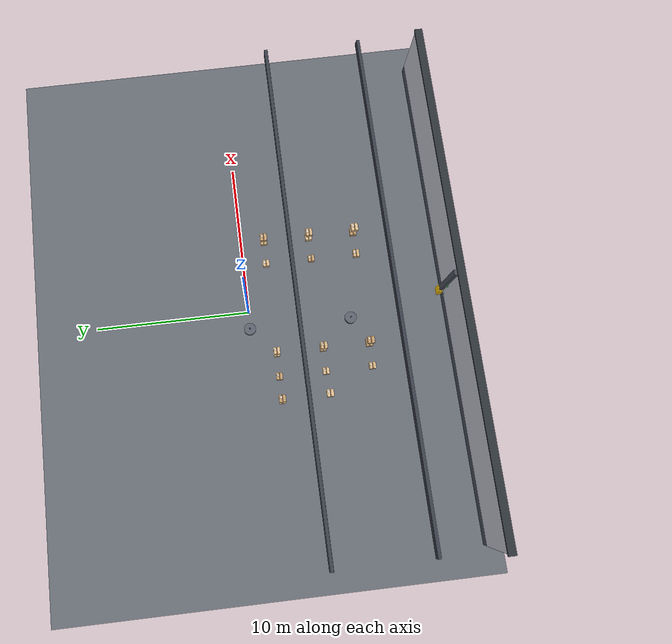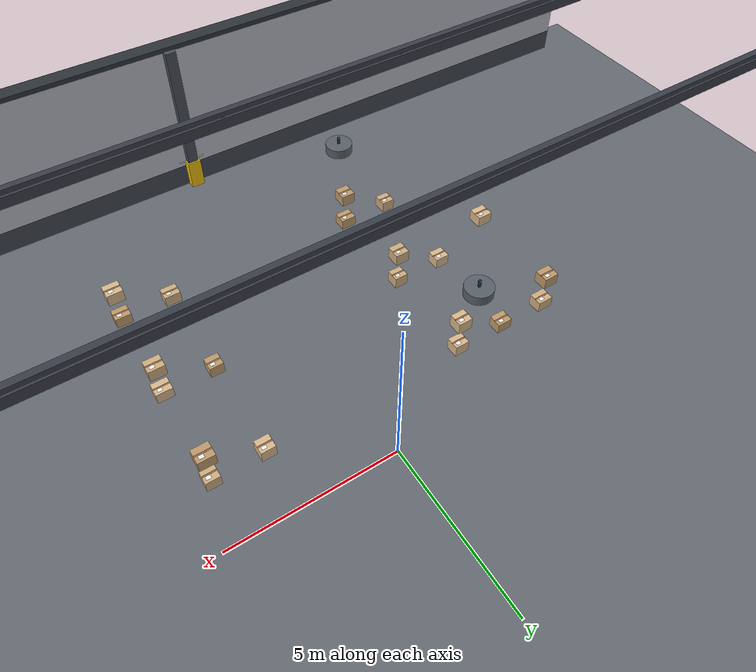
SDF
<sdf version="1.8">
 <world name="warehouse_3d">
  <model name="warehouse_floor">
   <static>true</static>
   <link name="floor_link">
    <collision name="floor_collision">
     <geometry><plane><normal>0 0 1</normal><size>36 28</size></plane></geometry>
     <surface><friction><ode><mu>1.0</mu><mu2>1.0</mu2></ode></friction></surface>
    </collision>
    <visual name="floor_visual">
     <geometry><plane><normal>0 0 1</normal><size>36 28</size></plane></geometry>
     <material>
      <ambient>0.32 0.34 0.36 1.0</ambient>
      <diffuse>0.40 0.42 0.45 1.0</diffuse>
      <specular>0.15 0.15 0.15 1.0</specular>
     </material>
    </visual>
   </link>
  </model>
  <model name="warehouse_architecture">
   <static>true</static>
   <link name="wall_south_base">
    <pose>0.0000 -13.0000 0.4000 0.0000 0.0000 0.0000</pose>
    <collision name="wall_south_base_col">
     <geometry><box><size>32.4000 0.4000 0.8000</size></box></geometry>
    </collision>
    <visual name="wall_south_base_vis">
     <geometry><box><size>32.4000 0.4000 0.8000</size></box></geometry>
     <material>
      <ambient>0.163 0.182 0.208 1.00</ambient>
      <diffuse>0.250 0.280 0.320 1.00</diffuse>
      <specular>0.15 0.15 0.15 1.0</specular>
     </material>
    </visual>
   </link>
   <link name="wall_south_upper">
    <pose>0.0000 -13.0000 3.0000 0.0000 0.0000 0.0000</pose>
    <collision name="wall_south_upper_col">
     <geometry><box><size>32.4000 0.4000 4.4000</size></box></geometry>
    </collision>
    <visual name="wall_south_upper_vis">
     <geometry><box><size>32.4000 0.4000 4.4000</size></box></geometry>
     <material>
      <ambient>0.468 0.481 0.501 1.00</ambient>
      <diffuse>0.720 0.740 0.770 1.00</diffuse>
      <specular>0.15 0.15 0.15 1.0</specular>
     </material>
    </visual>
   </link>
   <link name="wall_south_coping">
    <pose>0.0000 -13.0000 5.2500 0.0000 0.0000 0.0000</pose>
    <collision name="wall_south_coping_col">
     <geometry><box><size>32.6000 0.5000 0.1500</size></box></geometry>
    </collision>
    <visual name="wall_south_coping_vis">
     <geometry><box><size>32.6000 0.5000 0.1500</size></box></geometry>
     <material>
      <ambient>0.117 0.130 0.143 1.00</ambient>
      <diffuse>0.180 0.200 0.220 1.00</diffuse>
      <specular>0.15 0.15 0.15 1.0</specular>
     </material>
    </visual>
   </link>
   <link name="exit_door_south">
    <pose>0.0000 -12.8500 1.1000 0.0000 0.0000 0.0000</pose>
    <collision name="exit_door_south_col">
     <geometry><box><size>1.1000 0.0500 2.2000</size></box></geometry>
    </collision>
    <visual name="exit_door_south_vis">
     <geometry><box><size>1.1000 0.0500 2.2000</size></box></geometry>
     <material>
      <ambient>0.195 0.208 0.227 1.00</ambient>
      <diffuse>0.300 0.320 0.350 1.00</diffuse>
      <specular>0.15 0.15 0.15 1.0</specular>
     </material>
    </visual>
   </link>
   <link name="exit_pushbar_south">
    <pose>0.0000 -12.8000 1.0000 0.0000 0.0000 0.0000</pose>
    <collision name="exit_pushbar_south_col">
     <geometry><box><size>0.8500 0.0600 0.0600</size></box></geometry>
    </collision>
    <visual name="exit_pushbar_south_vis">
     <geometry><box><size>0.8500 0.0600 0.0600</size></box></geometry>
     <material>
      <ambient>0.520 0.520 0.552 1.00</ambient>
      <diffuse>0.800 0.800 0.850 1.00</diffuse>
      <specular>0.15 0.15 0.15 1.0</specular>
     </material>
    </visual>
   </link>
   <link name="exit_sign_south">
    <pose>0.0000 -12.8000 2.3500 0.0000 0.0000 0.0000</pose>
    <visual name="exit_sign_south_vis">
     <geometry><box><size>0.5500 0.0800 0.2500</size></box></geometry>
     <material>
      <ambient>0.065 0.552 0.163 1.00</ambient>
      <diffuse>0.100 0.850 0.250 1.00</diffuse>
      <specular>0.15 0.15 0.15 1.0</specular>
      <emissive>0.100 0.800 0.200 1.0</emissive>
     </material>
    </visual>
   </link>
   <link name="col_13_base">
    <pose>0.0000 -12.7500 0.5000 0.0000 0.0000 0.0000</pose>
    <collision name="col_13_base_col">
     <geometry><box><size>0.4500 0.4500 1.0000</size></box></geometry>
    </collision>
    <visual name="col_13_base_vis">
     <geometry><box><size>0.4500 0.4500 1.0000</size></box></geometry>
     <material>
      <ambient>0.617 0.488 0.033 1.00</ambient>
      <diffuse>0.950 0.750 0.050 1.00</diffuse>
      <specular>0.15 0.15 0.15 1.0</specular>
     </material>
    </visual>
   </link>
   <link name="col_13_stem">
    <pose>0.0000 -12.7500 3.1000 0.0000 0.0000 0.0000</pose>
    <collision name="col_13_stem_col">
     <geometry><box><size>0.3500 0.3500 4.2000</size></box></geometry>
    </collision>
    <visual name="col_13_stem_vis">
     <geometry><box><size>0.3500 0.3500 4.2000</size></box></geometry>
     <material>
      <ambient>0.182 0.195 0.221 1.00</ambient>
      <diffuse>0.280 0.300 0.340 1.00</diffuse>
      <specular>0.15 0.15 0.15 1.0</specular>
     </material>
    </visual>
   </link>
   <link name="truss_beam_0">
    <pose>0.0000 -9.0000 4.9000 0.0000 0.0000 0.0000</pose>
    <visual name="truss_beam_0_vis">
     <geometry><box><size>32.0000 0.2500 0.3500</size></box></geometry>
     <material>
      <ambient>0.143 0.156 0.182 1.00</ambient>
      <diffuse>0.220 0.240 0.280 1.00</diffuse>
      <specular>0.15 0.15 0.15 1.0</specular>
     </material>
    </visual>
   </link>
   <link name="truss_top_0">
    <pose>0.0000 -9.0000 5.2000 0.0000 0.0000 0.0000</pose>
    <visual name="truss_top_0_vis">
     <geometry><box><size>32.0000 0.2000 0.1500</size></box></geometry>
     <material>
      <ambient>0.143 0.156 0.182 1.00</ambient>
      <diffuse>0.220 0.240 0.280 1.00</diffuse>
      <specular>0.15 0.15 0.15 1.0</specular>
     </material>
    </visual>
   </link>
   <link name="truss_web_0_1">
    <pose>-6.0000 -9.0000 5.0500 0.0000 0.0000 0.0000</pose>
    <visual name="truss_web_0_1_vis">
     <geometry><box><size>0.1200 0.1200 0.3000</size></box></geometry>
     <material>
      <ambient>0.182 0.195 0.221 1.00</ambient>
      <diffuse>0.280 0.300 0.340 1.00</diffuse>
      <specular>0.15 0.15 0.15 1.0</specular>
     </material>
    </visual>
   </link>
   <link name="truss_web_0_2">
    <pose>0.0000 -9.0000 5.0500 0.0000 0.0000 0.0000</pose>
    <visual name="truss_web_0_2_vis">
     <geometry><box><size>0.1200 0.1200 0.3000</size></box></geometry>
     <material>
      <ambient>0.182 0.195 0.221 1.00</ambient>
      <diffuse>0.280 0.300 0.340 1.00</diffuse>
      <specular>0.15 0.15 0.15 1.0</specular>
     </material>
    </visual>
   </link>
   <link name="truss_beam_1">
    <pose>0.0000 -3.0000 4.9000 0.0000 0.0000 0.0000</pose>
    <visual name="truss_beam_1_vis">
     <geometry><box><size>32.0000 0.2500 0.3500</size></box></geometry>
     <material>
      <ambient>0.143 0.156 0.182 1.00</ambient>
      <diffuse>0.220 0.240 0.280 1.00</diffuse>
      <specular>0.15 0.15 0.15 1.0</specular>
     </material>
    </visual>
   </link>
   <link name="truss_top_1">
    <pose>0.0000 -3.0000 5.2000 0.0000 0.0000 0.0000</pose>
    <visual name="truss_top_1_vis">
     <geometry><box><size>32.0000 0.2000 0.1500</size></box></geometry>
     <material>
      <ambient>0.143 0.156 0.182 1.00</ambient>
      <diffuse>0.220 0.240 0.280 1.00</diffuse>
      <specular>0.15 0.15 0.15 1.0</specular>
     </material>
    </visual>
   </link>
   <link name="truss_web_1_1">
    <pose>-6.0000 -3.0000 5.0500 0.0000 0.0000 0.0000</pose>
    <visual name="truss_web_1_1_vis">
     <geometry><box><size>0.1200 0.1200 0.3000</size></box></geometry>
     <material>
      <ambient>0.182 0.195 0.221 1.00</ambient>
      <diffuse>0.280 0.300 0.340 1.00</diffuse>
      <specular>0.15 0.15 0.15 1.0</specular>
     </material>
    </visual>
   </link>
   <link name="truss_web_1_2">
    <pose>0.0000 -3.0000 5.0500 0.0000 0.0000 0.0000</pose>
    <visual name="truss_web_1_2_vis">
     <geometry><box><size>0.1200 0.1200 0.3000</size></box></geometry>
     <material>
      <ambient>0.182 0.195 0.221 1.00</ambient>
      <diffuse>0.280 0.300 0.340 1.00</diffuse>
      <specular>0.15 0.15 0.15 1.0</specular>
     </material>
    </visual>
   </link>
   <link name="fixture_bell_3">
    <pose>-2.0000 -6.0000 5.1500 0.0000 0.0000 0.0000</pose>
    <visual name="fixture_bell_3_vis">
     <geometry><cylinder><radius>0.3500</radius><length>0.2500</length></cylinder></geometry>
     <material>
      <ambient>0.227 0.247 0.273 1.00</ambient>
      <diffuse>0.350 0.380 0.420 1.00</diffuse>
      <specular>0.2 0.2 0.2 1.0</specular>
     </material>
    </visual>
   </link>
   <link name="fixture_stem_3">
    <pose>-2.0000 -6.0000 5.3500 0.0000 0.0000 0.0000</pose>
    <visual name="fixture_stem_3_vis">
     <geometry><cylinder><radius>0.0400</radius><length>0.2000</length></cylinder></geometry>
     <material>
      <ambient>0.098 0.098 0.117 1.00</ambient>
      <diffuse>0.150 0.150 0.180 1.00</diffuse>
      <specular>0.2 0.2 0.2 1.0</specular>
     </material>
    </visual>
   </link>
   <link name="fixture_lens_3">
    <pose>-2.0000 -6.0000 5.0200 0.0000 0.0000 0.0000</pose>
    <visual name="fixture_lens_3_vis">
     <geometry><cylinder><radius>0.3200</radius><length>0.0400</length></cylinder></geometry>
     <material>
      <ambient>0.617 0.637 0.650 1.00</ambient>
      <diffuse>0.950 0.980 1.000 1.00</diffuse>
      <specular>0.2 0.2 0.2 1.0</specular>
      <emissive>0.850 0.880 0.950 1.0</emissive>
     </material>
    </visual>
   </link>
   <link name="fixture_bell_4">
    <pose>-2.0000 0.0000 5.1500 0.0000 0.0000 0.0000</pose>
    <visual name="fixture_bell_4_vis">
     <geometry><cylinder><radius>0.3500</radius><length>0.2500</length></cylinder></geometry>
     <material>
      <ambient>0.227 0.247 0.273 1.00</ambient>
      <diffuse>0.350 0.380 0.420 1.00</diffuse>
      <specular>0.2 0.2 0.2 1.0</specular>
     </material>
    </visual>
   </link>
   <link name="fixture_stem_4">
    <pose>-2.0000 0.0000 5.3500 0.0000 0.0000 0.0000</pose>
    <visual name="fixture_stem_4_vis">
     <geometry><cylinder><radius>0.0400</radius><length>0.2000</length></cylinder></geometry>
     <material>
      <ambient>0.098 0.098 0.117 1.00</ambient>
      <diffuse>0.150 0.150 0.180 1.00</diffuse>
      <specular>0.2 0.2 0.2 1.0</specular>
     </material>
    </visual>
   </link>
   <link name="fixture_lens_4">
    <pose>-2.0000 0.0000 5.0200 0.0000 0.0000 0.0000</pose>
    <visual name="fixture_lens_4_vis">
     <geometry><cylinder><radius>0.3200</radius><length>0.0400</length></cylinder></geometry>
     <material>
      <ambient>0.617 0.637 0.650 1.00</ambient>
      <diffuse>0.950 0.980 1.000 1.00</diffuse>
      <specular>0.2 0.2 0.2 1.0</specular>
      <emissive>0.850 0.880 0.950 1.0</emissive>
     </material>
    </visual>
   </link>
  </model>
  <model name="package_P004">
   <static>true</static>
   <pose>-4.50 -7.50 0.82 0 0 0</pose>
   <link name="box_link">
    <collision name="box_col"><geometry><box><size>0.41 0.41 0.36</size></box></geometry></collision>
    <visual name="box_vis">
     <geometry><box><size>0.41 0.41 0.36</size></box></geometry>
     <material>
      <ambient>0.57 0.48 0.36 1.0</ambient>
      <diffuse>0.82 0.69 0.51 1.0</diffuse>
      <specular>0.08 0.08 0.08 1.0</specular>
     </material>
    </visual>
    <visual name="top_tape">
     <pose>0 0 0.1810 0 0 0</pose>
     <geometry><box><size>0.412 0.05 0.002</size></box></geometry>
     <material><ambient>0.48 0.35 0.20 1.0</ambient><diffuse>0.55 0.40 0.24 1.0</diffuse></material>
    </visual>
    <visual name="shipping_label">
     <pose>0.061 0.082 0.1820 0 0 0</pose>
     <geometry><box><size>0.14 0.10 0.002</size></box></geometry>
     <material><ambient>0.92 0.92 0.92 1.0</ambient><diffuse>0.98 0.98 0.98 1.0</diffuse></material>
    </visual>
   </link>
  </model>
  <model name="package_P005">
   <static>true</static>
   <pose>-3.00 -7.50 0.82 0 0 0</pose>
   <link name="box_link">
    <collision name="box_col"><geometry><box><size>0.48 0.40 0.34</size></box></geometry></collision>
    <visual name="box_vis">
     <geometry><box><size>0.48 0.40 0.34</size></box></geometry>
     <material>
      <ambient>0.53 0.43 0.30 1.0</ambient>
      <diffuse>0.76 0.61 0.43 1.0</diffuse>
      <specular>0.08 0.08 0.08 1.0</specular>
     </material>
    </visual>
    <visual name="top_tape">
     <pose>0 0 0.1710 0 0 0</pose>
     <geometry><box><size>0.482 0.05 0.002</size></box></geometry>
     <material><ambient>0.48 0.35 0.20 1.0</ambient><diffuse>0.55 0.40 0.24 1.0</diffuse></material>
    </visual>
    <visual name="shipping_label">
     <pose>0.072 0.080 0.1720 0 0 0</pose>
     <geometry><box><size>0.14 0.10 0.002</size></box></geometry>
     <material><ambient>0.92 0.92 0.92 1.0</ambient><diffuse>0.98 0.98 0.98 1.0</diffuse></material>
    </visual>
   </link>
  </model>
  <model name="package_P008">
   <static>true</static>
   <pose>-3.00 -7.50 1.82 0 0 0</pose>
   <link name="box_link">
    <collision name="box_col"><geometry><box><size>0.42 0.44 0.36</size></box></geometry></collision>
    <visual name="box_vis">
     <geometry><box><size>0.42 0.44 0.36</size></box></geometry>
     <material>
      <ambient>0.53 0.43 0.30 1.0</ambient>
      <diffuse>0.76 0.61 0.43 1.0</diffuse>
      <specular>0.08 0.08 0.08 1.0</specular>
     </material>
    </visual>
    <visual name="top_tape">
     <pose>0 0 0.1810 0 0 0</pose>
     <geometry><box><size>0.422 0.05 0.002</size></box></geometry>
     <material><ambient>0.48 0.35 0.20 1.0</ambient><diffuse>0.55 0.40 0.24 1.0</diffuse></material>
    </visual>
    <visual name="shipping_label">
     <pose>0.063 0.088 0.1820 0 0 0</pose>
     <geometry><box><size>0.14 0.10 0.002</size></box></geometry>
     <material><ambient>0.92 0.92 0.92 1.0</ambient><diffuse>0.98 0.98 0.98 1.0</diffuse></material>
    </visual>
   </link>
  </model>
  <model name="package_P012">
   <static>true</static>
   <pose>-4.50 -4.50 0.82 0 0 0</pose>
   <link name="box_link">
    <collision name="box_col"><geometry><box><size>0.43 0.40 0.35</size></box></geometry></collision>
    <visual name="box_vis">
     <geometry><box><size>0.43 0.40 0.35</size></box></geometry>
     <material>
      <ambient>0.60 0.51 0.39 1.0</ambient>
      <diffuse>0.86 0.73 0.56 1.0</diffuse>
      <specular>0.08 0.08 0.08 1.0</specular>
     </material>
    </visual>
    <visual name="top_tape">
     <pose>0 0 0.1760 0 0 0</pose>
     <geometry><box><size>0.432 0.05 0.002</size></box></geometry>
     <material><ambient>0.48 0.35 0.20 1.0</ambient><diffuse>0.55 0.40 0.24 1.0</diffuse></material>
    </visual>
    <visual name="shipping_label">
     <pose>0.065 0.080 0.1770 0 0 0</pose>
     <geometry><box><size>0.14 0.10 0.002</size></box></geometry>
     <material><ambient>0.92 0.92 0.92 1.0</ambient><diffuse>0.98 0.98 0.98 1.0</diffuse></material>
    </visual>
   </link>
  </model>
  <model name="package_P013">
   <static>true</static>
   <pose>-3.00 -4.50 0.82 0 0 0</pose>
   <link name="box_link">
    <collision name="box_col"><geometry><box><size>0.41 0.39 0.38</size></box></geometry></collision>
    <visual name="box_vis">
     <geometry><box><size>0.41 0.39 0.38</size></box></geometry>
     <material>
      <ambient>0.57 0.48 0.36 1.0</ambient>
      <diffuse>0.82 0.69 0.51 1.0</diffuse>
      <specular>0.08 0.08 0.08 1.0</specular>
     </material>
    </visual>
    <visual name="top_tape">
     <pose>0 0 0.1910 0 0 0</pose>
     <geometry><box><size>0.412 0.05 0.002</size></box></geometry>
     <material><ambient>0.48 0.35 0.20 1.0</ambient><diffuse>0.55 0.40 0.24 1.0</diffuse></material>
    </visual>
    <visual name="shipping_label">
     <pose>0.061 0.078 0.1920 0 0 0</pose>
     <geometry><box><size>0.14 0.10 0.002</size></box></geometry>
     <material><ambient>0.92 0.92 0.92 1.0</ambient><diffuse>0.98 0.98 0.98 1.0</diffuse></material>
    </visual>
   </link>
  </model>
  <model name="package_P015">
   <static>true</static>
   <pose>-6.00 -4.50 1.82 0 0 0</pose>
   <link name="box_link">
    <collision name="box_col"><geometry><box><size>0.45 0.43 0.35</size></box></geometry></collision>
    <visual name="box_vis">
     <geometry><box><size>0.45 0.43 0.35</size></box></geometry>
     <material>
      <ambient>0.60 0.51 0.39 1.0</ambient>
      <diffuse>0.86 0.73 0.56 1.0</diffuse>
      <specular>0.08 0.08 0.08 1.0</specular>
     </material>
    </visual>
    <visual name="top_tape">
     <pose>0 0 0.1760 0 0 0</pose>
     <geometry><box><size>0.452 0.05 0.002</size></box></geometry>
     <material><ambient>0.48 0.35 0.20 1.0</ambient><diffuse>0.55 0.40 0.24 1.0</diffuse></material>
    </visual>
    <visual name="shipping_label">
     <pose>0.068 0.086 0.1770 0 0 0</pose>
     <geometry><box><size>0.14 0.10 0.002</size></box></geometry>
     <material><ambient>0.92 0.92 0.92 1.0</ambient><diffuse>0.98 0.98 0.98 1.0</diffuse></material>
    </visual>
   </link>
  </model>
  <model name="package_P016">
   <static>true</static>
   <pose>-3.00 -4.50 1.82 0 0 0</pose>
   <link name="box_link">
    <collision name="box_col"><geometry><box><size>0.42 0.42 0.37</size></box></geometry></collision>
    <visual name="box_vis">
     <geometry><box><size>0.42 0.42 0.37</size></box></geometry>
     <material>
      <ambient>0.57 0.48 0.36 1.0</ambient>
      <diffuse>0.82 0.69 0.51 1.0</diffuse>
      <specular>0.08 0.08 0.08 1.0</specular>
     </material>
    </visual>
    <visual name="top_tape">
     <pose>0 0 0.1860 0 0 0</pose>
     <geometry><box><size>0.422 0.05 0.002</size></box></geometry>
     <material><ambient>0.48 0.35 0.20 1.0</ambient><diffuse>0.55 0.40 0.24 1.0</diffuse></material>
    </visual>
    <visual name="shipping_label">
     <pose>0.063 0.084 0.1870 0 0 0</pose>
     <geometry><box><size>0.14 0.10 0.002</size></box></geometry>
     <material><ambient>0.92 0.92 0.92 1.0</ambient><diffuse>0.98 0.98 0.98 1.0</diffuse></material>
    </visual>
   </link>
  </model>
  <model name="package_P019">
   <static>true</static>
   <pose>-6.00 -1.50 0.82 0 0 0</pose>
   <link name="box_link">
    <collision name="box_col"><geometry><box><size>0.47 0.40 0.36</size></box></geometry></collision>
    <visual name="box_vis">
     <geometry><box><size>0.47 0.40 0.36</size></box></geometry>
     <material>
      <ambient>0.57 0.48 0.36 1.0</ambient>
      <diffuse>0.82 0.69 0.51 1.0</diffuse>
      <specular>0.08 0.08 0.08 1.0</specular>
     </material>
    </visual>
    <visual name="top_tape">
     <pose>0 0 0.1810 0 0 0</pose>
     <geometry><box><size>0.472 0.05 0.002</size></box></geometry>
     <material><ambient>0.48 0.35 0.20 1.0</ambient><diffuse>0.55 0.40 0.24 1.0</diffuse></material>
    </visual>
    <visual name="shipping_label">
     <pose>0.070 0.080 0.1820 0 0 0</pose>
     <geometry><box><size>0.14 0.10 0.002</size></box></geometry>
     <material><ambient>0.92 0.92 0.92 1.0</ambient><diffuse>0.98 0.98 0.98 1.0</diffuse></material>
    </visual>
   </link>
  </model>
  <model name="package_P020">
   <static>true</static>
   <pose>-4.50 -1.50 0.82 0 0 0</pose>
   <link name="box_link">
    <collision name="box_col"><geometry><box><size>0.45 0.39 0.34</size></box></geometry></collision>
    <visual name="box_vis">
     <geometry><box><size>0.45 0.39 0.34</size></box></geometry>
     <material>
      <ambient>0.53 0.43 0.30 1.0</ambient>
      <diffuse>0.76 0.61 0.43 1.0</diffuse>
      <specular>0.08 0.08 0.08 1.0</specular>
     </material>
    </visual>
    <visual name="top_tape">
     <pose>0 0 0.1710 0 0 0</pose>
     <geometry><box><size>0.452 0.05 0.002</size></box></geometry>
     <material><ambient>0.48 0.35 0.20 1.0</ambient><diffuse>0.55 0.40 0.24 1.0</diffuse></material>
    </visual>
    <visual name="shipping_label">
     <pose>0.068 0.078 0.1720 0 0 0</pose>
     <geometry><box><size>0.14 0.10 0.002</size></box></geometry>
     <material><ambient>0.92 0.92 0.92 1.0</ambient><diffuse>0.98 0.98 0.98 1.0</diffuse></material>
    </visual>
   </link>
  </model>
  <model name="package_P021">
   <static>true</static>
   <pose>-3.00 -1.50 0.82 0 0 0</pose>
   <link name="box_link">
    <collision name="box_col"><geometry><box><size>0.43 0.38 0.37</size></box></geometry></collision>
    <visual name="box_vis">
     <geometry><box><size>0.43 0.38 0.37</size></box></geometry>
     <material>
      <ambient>0.60 0.51 0.39 1.0</ambient>
      <diffuse>0.86 0.73 0.56 1.0</diffuse>
      <specular>0.08 0.08 0.08 1.0</specular>
     </material>
    </visual>
    <visual name="top_tape">
     <pose>0 0 0.1860 0 0 0</pose>
     <geometry><box><size>0.432 0.05 0.002</size></box></geometry>
     <material><ambient>0.48 0.35 0.20 1.0</ambient><diffuse>0.55 0.40 0.24 1.0</diffuse></material>
    </visual>
    <visual name="shipping_label">
     <pose>0.065 0.076 0.1870 0 0 0</pose>
     <geometry><box><size>0.14 0.10 0.002</size></box></geometry>
     <material><ambient>0.92 0.92 0.92 1.0</ambient><diffuse>0.98 0.98 0.98 1.0</diffuse></material>
    </visual>
   </link>
  </model>
  <model name="package_P023">
   <static>true</static>
   <pose>-6.00 -1.50 1.82 0 0 0</pose>
   <link name="box_link">
    <collision name="box_col"><geometry><box><size>0.45 0.41 0.36</size></box></geometry></collision>
    <visual name="box_vis">
     <geometry><box><size>0.45 0.41 0.36</size></box></geometry>
     <material>
      <ambient>0.53 0.43 0.30 1.0</ambient>
      <diffuse>0.76 0.61 0.43 1.0</diffuse>
      <specular>0.08 0.08 0.08 1.0</specular>
     </material>
    </visual>
    <visual name="top_tape">
     <pose>0 0 0.1810 0 0 0</pose>
     <geometry><box><size>0.452 0.05 0.002</size></box></geometry>
     <material><ambient>0.48 0.35 0.20 1.0</ambient><diffuse>0.55 0.40 0.24 1.0</diffuse></material>
    </visual>
    <visual name="shipping_label">
     <pose>0.068 0.082 0.1820 0 0 0</pose>
     <geometry><box><size>0.14 0.10 0.002</size></box></geometry>
     <material><ambient>0.92 0.92 0.92 1.0</ambient><diffuse>0.98 0.98 0.98 1.0</diffuse></material>
    </visual>
   </link>
  </model>
  <model name="package_P024">
   <static>true</static>
   <pose>-3.00 -1.50 1.82 0 0 0</pose>
   <link name="box_link">
    <collision name="box_col"><geometry><box><size>0.42 0.40 0.38</size></box></geometry></collision>
    <visual name="box_vis">
     <geometry><box><size>0.42 0.40 0.38</size></box></geometry>
     <material>
      <ambient>0.60 0.51 0.39 1.0</ambient>
      <diffuse>0.86 0.73 0.56 1.0</diffuse>
      <specular>0.08 0.08 0.08 1.0</specular>
     </material>
    </visual>
    <visual name="top_tape">
     <pose>0 0 0.1910 0 0 0</pose>
     <geometry><box><size>0.422 0.05 0.002</size></box></geometry>
     <material><ambient>0.48 0.35 0.20 1.0</ambient><diffuse>0.55 0.40 0.24 1.0</diffuse></material>
    </visual>
    <visual name="shipping_label">
     <pose>0.063 0.080 0.1920 0 0 0</pose>
     <geometry><box><size>0.14 0.10 0.002</size></box></geometry>
     <material><ambient>0.92 0.92 0.92 1.0</ambient><diffuse>0.98 0.98 0.98 1.0</diffuse></material>
    </visual>
   </link>
  </model>
  <model name="package_P049">
   <static>true</static>
   <pose>3.00 -7.50 0.82 0 0 0</pose>
   <link name="box_link">
    <collision name="box_col"><geometry><box><size>0.48 0.40 0.36</size></box></geometry></collision>
    <visual name="box_vis">
     <geometry><box><size>0.48 0.40 0.36</size></box></geometry>
     <material>
      <ambient>0.57 0.48 0.36 1.0</ambient>
      <diffuse>0.82 0.69 0.51 1.0</diffuse>
      <specular>0.08 0.08 0.08 1.0</specular>
     </material>
    </visual>
    <visual name="top_tape">
     <pose>0 0 0.1810 0 0 0</pose>
     <geometry><box><size>0.482 0.05 0.002</size></box></geometry>
     <material><ambient>0.48 0.35 0.20 1.0</ambient><diffuse>0.55 0.40 0.24 1.0</diffuse></material>
    </visual>
    <visual name="shipping_label">
     <pose>0.072 0.080 0.1820 0 0 0</pose>
     <geometry><box><size>0.14 0.10 0.002</size></box></geometry>
     <material><ambient>0.92 0.92 0.92 1.0</ambient><diffuse>0.98 0.98 0.98 1.0</diffuse></material>
    </visual>
   </link>
  </model>
  <model name="package_P050">
   <static>true</static>
   <pose>4.50 -7.50 0.82 0 0 0</pose>
   <link name="box_link">
    <collision name="box_col"><geometry><box><size>0.47 0.41 0.34</size></box></geometry></collision>
    <visual name="box_vis">
     <geometry><box><size>0.47 0.41 0.34</size></box></geometry>
     <material>
      <ambient>0.53 0.43 0.30 1.0</ambient>
      <diffuse>0.76 0.61 0.43 1.0</diffuse>
      <specular>0.08 0.08 0.08 1.0</specular>
     </material>
    </visual>
    <visual name="top_tape">
     <pose>0 0 0.1710 0 0 0</pose>
     <geometry><box><size>0.472 0.05 0.002</size></box></geometry>
     <material><ambient>0.48 0.35 0.20 1.0</ambient><diffuse>0.55 0.40 0.24 1.0</diffuse></material>
    </visual>
    <visual name="shipping_label">
     <pose>0.070 0.082 0.1720 0 0 0</pose>
     <geometry><box><size>0.14 0.10 0.002</size></box></geometry>
     <material><ambient>0.92 0.92 0.92 1.0</ambient><diffuse>0.98 0.98 0.98 1.0</diffuse></material>
    </visual>
   </link>
  </model>
  <model name="package_P054">
   <static>true</static>
   <pose>4.50 -7.50 1.82 0 0 0</pose>
   <link name="box_link">
    <collision name="box_col"><geometry><box><size>0.47 0.44 0.38</size></box></geometry></collision>
    <visual name="box_vis">
     <geometry><box><size>0.47 0.44 0.38</size></box></geometry>
     <material>
      <ambient>0.60 0.51 0.39 1.0</ambient>
      <diffuse>0.86 0.73 0.56 1.0</diffuse>
      <specular>0.08 0.08 0.08 1.0</specular>
     </material>
    </visual>
    <visual name="top_tape">
     <pose>0 0 0.1910 0 0 0</pose>
     <geometry><box><size>0.472 0.05 0.002</size></box></geometry>
     <material><ambient>0.48 0.35 0.20 1.0</ambient><diffuse>0.55 0.40 0.24 1.0</diffuse></material>
    </visual>
    <visual name="shipping_label">
     <pose>0.070 0.088 0.1920 0 0 0</pose>
     <geometry><box><size>0.14 0.10 0.002</size></box></geometry>
     <material><ambient>0.92 0.92 0.92 1.0</ambient><diffuse>0.98 0.98 0.98 1.0</diffuse></material>
    </visual>
   </link>
  </model>
  <model name="package_P056">
   <static>true</static>
   <pose>3.00 -4.50 0.82 0 0 0</pose>
   <link name="box_link">
    <collision name="box_col"><geometry><box><size>0.41 0.41 0.37</size></box></geometry></collision>
    <visual name="box_vis">
     <geometry><box><size>0.41 0.41 0.37</size></box></geometry>
     <material>
      <ambient>0.53 0.43 0.30 1.0</ambient>
      <diffuse>0.76 0.61 0.43 1.0</diffuse>
      <specular>0.08 0.08 0.08 1.0</specular>
     </material>
    </visual>
    <visual name="top_tape">
     <pose>0 0 0.1860 0 0 0</pose>
     <geometry><box><size>0.412 0.05 0.002</size></box></geometry>
     <material><ambient>0.48 0.35 0.20 1.0</ambient><diffuse>0.55 0.40 0.24 1.0</diffuse></material>
    </visual>
    <visual name="shipping_label">
     <pose>0.061 0.082 0.1870 0 0 0</pose>
     <geometry><box><size>0.14 0.10 0.002</size></box></geometry>
     <material><ambient>0.92 0.92 0.92 1.0</ambient><diffuse>0.98 0.98 0.98 1.0</diffuse></material>
    </visual>
   </link>
  </model>
  <model name="package_P057">
   <static>true</static>
   <pose>4.50 -4.50 0.82 0 0 0</pose>
   <link name="box_link">
    <collision name="box_col"><geometry><box><size>0.48 0.42 0.35</size></box></geometry></collision>
    <visual name="box_vis">
     <geometry><box><size>0.48 0.42 0.35</size></box></geometry>
     <material>
      <ambient>0.60 0.51 0.39 1.0</ambient>
      <diffuse>0.86 0.73 0.56 1.0</diffuse>
      <specular>0.08 0.08 0.08 1.0</specular>
     </material>
    </visual>
    <visual name="top_tape">
     <pose>0 0 0.1760 0 0 0</pose>
     <geometry><box><size>0.482 0.05 0.002</size></box></geometry>
     <material><ambient>0.48 0.35 0.20 1.0</ambient><diffuse>0.55 0.40 0.24 1.0</diffuse></material>
    </visual>
    <visual name="shipping_label">
     <pose>0.072 0.084 0.1770 0 0 0</pose>
     <geometry><box><size>0.14 0.10 0.002</size></box></geometry>
     <material><ambient>0.92 0.92 0.92 1.0</ambient><diffuse>0.98 0.98 0.98 1.0</diffuse></material>
    </visual>
   </link>
  </model>
  <model name="package_P061">
   <static>true</static>
   <pose>4.50 -4.50 1.82 0 0 0</pose>
   <link name="box_link">
    <collision name="box_col"><geometry><box><size>0.47 0.41 0.37</size></box></geometry></collision>
    <visual name="box_vis">
     <geometry><box><size>0.47 0.41 0.37</size></box></geometry>
     <material>
      <ambient>0.57 0.48 0.36 1.0</ambient>
      <diffuse>0.82 0.69 0.51 1.0</diffuse>
      <specular>0.08 0.08 0.08 1.0</specular>
     </material>
    </visual>
    <visual name="top_tape">
     <pose>0 0 0.1860 0 0 0</pose>
     <geometry><box><size>0.472 0.05 0.002</size></box></geometry>
     <material><ambient>0.48 0.35 0.20 1.0</ambient><diffuse>0.55 0.40 0.24 1.0</diffuse></material>
    </visual>
    <visual name="shipping_label">
     <pose>0.070 0.082 0.1870 0 0 0</pose>
     <geometry><box><size>0.14 0.10 0.002</size></box></geometry>
     <material><ambient>0.92 0.92 0.92 1.0</ambient><diffuse>0.98 0.98 0.98 1.0</diffuse></material>
    </visual>
   </link>
  </model>
  <model name="package_P063">
   <static>true</static>
   <pose>3.00 -1.50 0.82 0 0 0</pose>
   <link name="box_link">
    <collision name="box_col"><geometry><box><size>0.42 0.42 0.38</size></box></geometry></collision>
    <visual name="box_vis">
     <geometry><box><size>0.42 0.42 0.38</size></box></geometry>
     <material>
      <ambient>0.60 0.51 0.39 1.0</ambient>
      <diffuse>0.86 0.73 0.56 1.0</diffuse>
      <specular>0.08 0.08 0.08 1.0</specular>
     </material>
    </visual>
    <visual name="top_tape">
     <pose>0 0 0.1910 0 0 0</pose>
     <geometry><box><size>0.422 0.05 0.002</size></box></geometry>
     <material><ambient>0.48 0.35 0.20 1.0</ambient><diffuse>0.55 0.40 0.24 1.0</diffuse></material>
    </visual>
    <visual name="shipping_label">
     <pose>0.063 0.084 0.1920 0 0 0</pose>
     <geometry><box><size>0.14 0.10 0.002</size></box></geometry>
     <material><ambient>0.92 0.92 0.92 1.0</ambient><diffuse>0.98 0.98 0.98 1.0</diffuse></material>
    </visual>
   </link>
  </model>
  <model name="package_P064">
   <static>true</static>
   <pose>4.50 -1.50 0.82 0 0 0</pose>
   <link name="box_link">
    <collision name="box_col"><geometry><box><size>0.41 0.43 0.36</size></box></geometry></collision>
    <visual name="box_vis">
     <geometry><box><size>0.41 0.43 0.36</size></box></geometry>
     <material>
      <ambient>0.57 0.48 0.36 1.0</ambient>
      <diffuse>0.82 0.69 0.51 1.0</diffuse>
      <specular>0.08 0.08 0.08 1.0</specular>
     </material>
    </visual>
    <visual name="top_tape">
     <pose>0 0 0.1810 0 0 0</pose>
     <geometry><box><size>0.412 0.05 0.002</size></box></geometry>
     <material><ambient>0.48 0.35 0.20 1.0</ambient><diffuse>0.55 0.40 0.24 1.0</diffuse></material>
    </visual>
    <visual name="shipping_label">
     <pose>0.061 0.086 0.1820 0 0 0</pose>
     <geometry><box><size>0.14 0.10 0.002</size></box></geometry>
     <material><ambient>0.92 0.92 0.92 1.0</ambient><diffuse>0.98 0.98 0.98 1.0</diffuse></material>
    </visual>
   </link>
  </model>
  <model name="package_P068">
   <static>true</static>
   <pose>4.50 -1.50 1.82 0 0 0</pose>
   <link name="box_link">
    <collision name="box_col"><geometry><box><size>0.47 0.43 0.36</size></box></geometry></collision>
    <visual name="box_vis">
     <geometry><box><size>0.47 0.43 0.36</size></box></geometry>
     <material>
      <ambient>0.53 0.43 0.30 1.0</ambient>
      <diffuse>0.76 0.61 0.43 1.0</diffuse>
      <specular>0.08 0.08 0.08 1.0</specular>
     </material>
    </visual>
    <visual name="top_tape">
     <pose>0 0 0.1810 0 0 0</pose>
     <geometry><box><size>0.472 0.05 0.002</size></box></geometry>
     <material><ambient>0.48 0.35 0.20 1.0</ambient><diffuse>0.55 0.40 0.24 1.0</diffuse></material>
    </visual>
    <visual name="shipping_label">
     <pose>0.070 0.086 0.1820 0 0 0</pose>
     <geometry><box><size>0.14 0.10 0.002</size></box></geometry>
     <material><ambient>0.92 0.92 0.92 1.0</ambient><diffuse>0.98 0.98 0.98 1.0</diffuse></material>
    </visual>
   </link>
  </model>
 </world>
</sdf>
